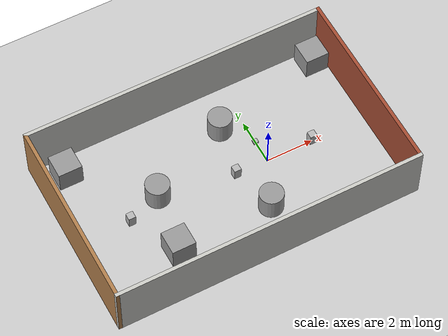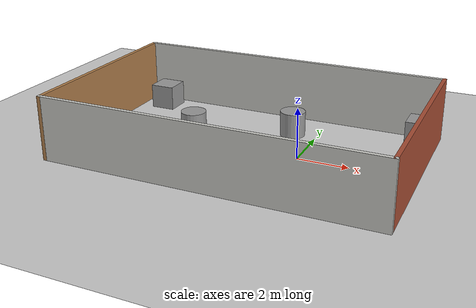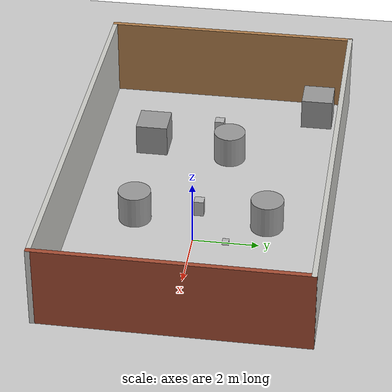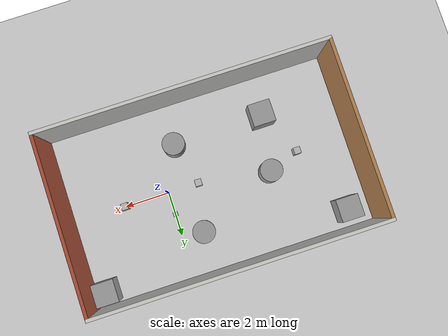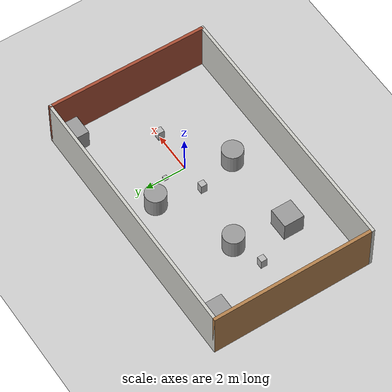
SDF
<sdf version='1.7'>
<world name='default'>
<light name='sun' type='directional'>
<cast_shadows>1</cast_shadows>
<pose>0 0 10 0 -0 0</pose>
<diffuse>0.8 0.8 0.8 1</diffuse>
<specular>0.2 0.2 0.2 1</specular>
<attenuation>
<range>1000</range>
<constant>0.9</constant>
<linear>0.01</linear>
<quadratic>0.001</quadratic>
</attenuation>
<direction>-0.5 0.1 -0.9</direction>
<spot>
<inner_angle>0</inner_angle>
<outer_angle>0</outer_angle>
<falloff>0</falloff>
</spot>
</light>
<model name='ground_plane'>
<static>1</static>
<link name='link'>
<collision name='collision'>
<geometry>
<plane>
<normal>0 0 1</normal>
<size>100 100</size>
</plane>
</geometry>
<surface>
<contact>
<collide_bitmask>65535</collide_bitmask>
<ode/>
</contact>
<friction>
<ode>
<mu>100</mu>
<mu2>50</mu2>
</ode>
<torsional>
<ode/>
</torsional>
</friction>
<bounce/>
</surface>
<max_contacts>10</max_contacts>
</collision>
<visual name='visual'>
<cast_shadows>0</cast_shadows>
<geometry>
<plane>
<normal>0 0 1</normal>
<size>100 100</size>
</plane>
</geometry>
<material>
<script>
<uri>file://media/materials/scripts/gazebo.material</uri>
<name>Gazebo/Grey</name>
</script>
</material>
</visual>
<self_collide>0</self_collide>
<enable_wind>0</enable_wind>
<kinematic>0</kinematic>
</link>
</model>
<gravity>0 0 -9.8</gravity>
<magnetic_field>6e-06 2.3e-05 -4.2e-05</magnetic_field>
<atmosphere type='adiabatic'/>
<physics type='ode'>
<max_step_size>0.001</max_step_size>
<real_time_factor>1</real_time_factor>
<real_time_update_rate>1000</real_time_update_rate>
</physics>
<scene>
<ambient>0.4 0.4 0.4 1</ambient>
<background>0.7 0.7 0.7 1</background>
<shadows>1</shadows>
</scene>
<wind/>
<spherical_coordinates>
<surface_model>EARTH_WGS84</surface_model>
<latitude_deg>0</latitude_deg>
<longitude_deg>0</longitude_deg>
<elevation>0</elevation>
<heading_deg>0</heading_deg>
</spherical_coordinates>
<model name='box_house'>
<pose>-1.97643 0.059964 0 0 -0 0</pose>
<link name='Wall_1'>
<collision name='Wall_1_Collision'>
<geometry>
<box>
<size>13 0.15 2.5</size>
</box>
</geometry>
<pose>0 0 1.25 0 -0 0</pose>
<surface>
<contact>
<ode/>
</contact>
<bounce/>
<friction>
<torsional>
<ode/>
</torsional>
<ode/>
</friction>
</surface>
<max_contacts>10</max_contacts>
</collision>
<visual name='Wall_1_Visual'>
<pose>0 0 1.25 0 -0 0</pose>
<geometry>
<box>
<size>13 0.15 2.5</size>
</box>
</geometry>
<material>
<script>
<uri>file://media/materials/scripts/gazebo.material</uri>
<name>Gazebo/CeilingTiled</name>
</script>
<ambient>1 1 1 1</ambient>
</material>
<meta>
<layer>0</layer>
</meta>
</visual>
<pose>0 3.925 0 0 -0 0</pose>
<self_collide>0</self_collide>
<enable_wind>0</enable_wind>
<kinematic>0</kinematic>
</link>
<link name='Wall_2'>
<collision name='Wall_2_Collision'>
<geometry>
<box>
<size>8 0.15 2.5</size>
</box>
</geometry>
<pose>0 0 1.25 0 -0 0</pose>
<surface>
<contact>
<ode/>
</contact>
<bounce/>
<friction>
<torsional>
<ode/>
</torsional>
<ode/>
</friction>
</surface>
<max_contacts>10</max_contacts>
</collision>
<visual name='Wall_2_Visual'>
<pose>0 0 1.25 0 -0 0</pose>
<geometry>
<box>
<size>8 0.15 2.5</size>
</box>
</geometry>
<material>
<script>
<uri>file://media/materials/scripts/gazebo.material</uri>
<name>Gazebo/Bricks</name>
</script>
<ambient>1 1 1 1</ambient>
</material>
<meta>
<layer>0</layer>
</meta>
</visual>
<pose>6.425 -0 0 0 -0 -1.5708</pose>
<self_collide>0</self_collide>
<enable_wind>0</enable_wind>
<kinematic>0</kinematic>
</link>
<link name='Wall_3'>
<collision name='Wall_3_Collision'>
<geometry>
<box>
<size>13 0.15 2.5</size>
</box>
</geometry>
<pose>0 0 1.25 0 -0 0</pose>
<surface>
<contact>
<ode/>
</contact>
<bounce/>
<friction>
<torsional>
<ode/>
</torsional>
<ode/>
</friction>
</surface>
<max_contacts>10</max_contacts>
</collision>
<visual name='Wall_3_Visual'>
<pose>0 0 1.25 0 -0 0</pose>
<geometry>
<box>
<size>13 0.15 2.5</size>
</box>
</geometry>
<material>
<script>
<uri>file://media/materials/scripts/gazebo.material</uri>
<name>Gazebo/CeilingTiled</name>
</script>
<ambient>1 1 1 1</ambient>
</material>
<meta>
<layer>0</layer>
</meta>
</visual>
<pose>0 -3.925 0 0 -0 3.14159</pose>
<self_collide>0</self_collide>
<enable_wind>0</enable_wind>
<kinematic>0</kinematic>
</link>
<link name='Wall_4'>
<collision name='Wall_4_Collision'>
<geometry>
<box>
<size>8 0.15 2.5</size>
</box>
</geometry>
<pose>0 0 1.25 0 -0 0</pose>
<surface>
<contact>
<ode/>
</contact>
<bounce/>
<friction>
<torsional>
<ode/>
</torsional>
<ode/>
</friction>
</surface>
<max_contacts>10</max_contacts>
</collision>
<visual name='Wall_4_Visual'>
<pose>0 0 1.25 0 -0 0</pose>
<geometry>
<box>
<size>8 0.15 2.5</size>
</box>
</geometry>
<material>
<script>
<uri>file://media/materials/scripts/gazebo.material</uri>
<name>Gazebo/Wood</name>
</script>
<ambient>1 1 1 1</ambient>
</material>
<meta>
<layer>0</layer>
</meta>
</visual>
<pose>-6.425 -0 0 0 -0 1.5708</pose>
<self_collide>0</self_collide>
<enable_wind>0</enable_wind>
<kinematic>0</kinematic>
</link>
<static>1</static>
</model>
<model name='unit_box'>
<pose>-7.27143 3.09748 0.5 0 -0 0</pose>
<link name='link'>
<inertial>
<mass>1</mass>
<inertia>
<ixx>0.166667</ixx>
<ixy>0</ixy>
<ixz>0</ixz>
<iyy>0.166667</iyy>
<iyz>0</iyz>
<izz>0.166667</izz>
</inertia>
<pose>0 0 0 0 -0 0</pose>
</inertial>
<collision name='collision'>
<geometry>
<box>
<size>1 1 1</size>
</box>
</geometry>
<surface>
<contact>
<ode/>
</contact>
<bounce/>
<friction>
<torsional>
<ode/>
</torsional>
<ode/>
</friction>
</surface>
<max_contacts>10</max_contacts>
</collision>
<visual name='visual'>
<geometry>
<box>
<size>1 1 1</size>
</box>
</geometry>
<material>
<script>
<name>Gazebo/Grey</name>
<uri>file://media/materials/scripts/gazebo.material</uri>
</script>
</material>
</visual>
<self_collide>0</self_collide>
<enable_wind>0</enable_wind>
<kinematic>0</kinematic>
</link>
</model>
<model name='unit_cylinder'>
<pose>-4.57746 0.509886 0.5 0 -0 0</pose>
<link name='link'>
<inertial>
<mass>1</mass>
<inertia>
<ixx>0.145833</ixx>
<ixy>0</ixy>
<ixz>0</ixz>
<iyy>0.145833</iyy>
<iyz>0</iyz>
<izz>0.125</izz>
</inertia>
<pose>0 0 0 0 -0 0</pose>
</inertial>
<collision name='collision'>
<geometry>
<cylinder>
<radius>0.5</radius>
<length>1</length>
</cylinder>
</geometry>
<surface>
<contact>
<ode/>
</contact>
<bounce/>
<friction>
<torsional>
<ode/>
</torsional>
<ode/>
</friction>
</surface>
<max_contacts>10</max_contacts>
</collision>
<visual name='visual'>
<geometry>
<cylinder>
<radius>0.5</radius>
<length>1</length>
</cylinder>
</geometry>
<material>
<script>
<name>Gazebo/Grey</name>
<uri>file://media/materials/scripts/gazebo.material</uri>
</script>
</material>
</visual>
<self_collide>0</self_collide>
<enable_wind>0</enable_wind>
<kinematic>0</kinematic>
</link>
</model>
<gui fullscreen='0'>
<camera name='user_camera'>
<pose>-2.68744 -4.4037 20.9537 -0 1.31164 1.40819</pose>
<view_controller>orbit</view_controller>
<projection_type>perspective</projection_type>
</camera>
</gui>
<model name='unit_box_0'>
<pose>-4.96407 -2.00354 0.5 0 -0 0</pose>
<link name='link'>
<inertial>
<mass>1</mass>
<inertia>
<ixx>0.166667</ixx>
<ixy>0</ixy>
<ixz>0</ixz>
<iyy>0.166667</iyy>
<iyz>0</iyz>
<izz>0.166667</izz>
</inertia>
<pose>0 0 0 0 -0 0</pose>
</inertial>
<collision name='collision'>
<geometry>
<box>
<size>1 1 1</size>
</box>
</geometry>
<surface>
<contact>
<ode/>
</contact>
<bounce/>
<friction>
<torsional>
<ode/>
</torsional>
<ode/>
</friction>
</surface>
<max_contacts>10</max_contacts>
</collision>
<visual name='visual'>
<geometry>
<box>
<size>1 1 1</size>
</box>
</geometry>
<material>
<script>
<name>Gazebo/Grey</name>
<uri>file://media/materials/scripts/gazebo.material</uri>
</script>
</material>
</visual>
<self_collide>0</self_collide>
<enable_wind>0</enable_wind>
<kinematic>0</kinematic>
</link>
</model>
<model name='unit_box_1'>
<pose>3.83312 3.3034 0.5 0 -0 0</pose>
<link name='link'>
<inertial>
<mass>1</mass>
<inertia>
<ixx>0.166667</ixx>
<ixy>0</ixy>
<ixz>0</ixz>
<iyy>0.166667</iyy>
<iyz>0</iyz>
<izz>0.166667</izz>
</inertia>
<pose>0 0 0 0 -0 0</pose>
</inertial>
<collision name='collision'>
<geometry>
<box>
<size>1 1 1</size>
</box>
</geometry>
<surface>
<contact>
<ode/>
</contact>
<bounce/>
<friction>
<torsional>
<ode/>
</torsional>
<ode/>
</friction>
</surface>
<max_contacts>10</max_contacts>
</collision>
<visual name='visual'>
<geometry>
<box>
<size>1 1 1</size>
</box>
</geometry>
<material>
<script>
<name>Gazebo/Grey</name>
<uri>file://media/materials/scripts/gazebo.material</uri>
</script>
</material>
</visual>
<self_collide>0</self_collide>
<enable_wind>0</enable_wind>
<kinematic>0</kinematic>
</link>
</model>
<model name='unit_cylinder_0'>
<pose>-0.988144 2.12658 0.5 0 -0 0</pose>
<link name='link'>
<inertial>
<mass>1</mass>
<inertia>
<ixx>0.145833</ixx>
<ixy>0</ixy>
<ixz>0</ixz>
<iyy>0.145833</iyy>
<iyz>0</iyz>
<izz>0.125</izz>
</inertia>
<pose>0 0 0 0 -0 0</pose>
</inertial>
<collision name='collision'>
<geometry>
<cylinder>
<radius>0.5</radius>
<length>1</length>
</cylinder>
</geometry>
<surface>
<contact>
<ode/>
</contact>
<bounce/>
<friction>
<torsional>
<ode/>
</torsional>
<ode/>
</friction>
</surface>
<max_contacts>10</max_contacts>
</collision>
<visual name='visual'>
<geometry>
<cylinder>
<radius>0.5</radius>
<length>1</length>
</cylinder>
</geometry>
<material>
<script>
<name>Gazebo/Grey</name>
<uri>file://media/materials/scripts/gazebo.material</uri>
</script>
</material>
</visual>
<self_collide>0</self_collide>
<enable_wind>0</enable_wind>
<kinematic>0</kinematic>
</link>
</model>
<model name='unit_cylinder_1'>
<pose>-0.890578 -1.90634 0.5 0 -0 0</pose>
<link name='link'>
<inertial>
<mass>1</mass>
<inertia>
<ixx>0.145833</ixx>
<ixy>0</ixy>
<ixz>0</ixz>
<iyy>0.145833</iyy>
<iyz>0</iyz>
<izz>0.125</izz>
</inertia>
<pose>0 0 0 0 -0 0</pose>
</inertial>
<collision name='collision'>
<geometry>
<cylinder>
<radius>0.5</radius>
<length>1</length>
</cylinder>
</geometry>
<surface>
<contact>
<ode/>
</contact>
<bounce/>
<friction>
<torsional>
<ode/>
</torsional>
<ode/>
</friction>
</surface>
<max_contacts>10</max_contacts>
</collision>
<visual name='visual'>
<geometry>
<cylinder>
<radius>0.5</radius>
<length>1</length>
</cylinder>
</geometry>
<material>
<script>
<name>Gazebo/Grey</name>
<uri>file://media/materials/scripts/gazebo.material</uri>
</script>
</material>
</visual>
<self_collide>0</self_collide>
<enable_wind>0</enable_wind>
<kinematic>0</kinematic>
</link>
</model>
<!-- 动态往复移动障碍物方块，红色 -->
<model name="dynamic_obs">
<pose>-1.4 0 0.27 0 0 0</pose>
<link name="base_link">
<kinematic>true</kinematic>
<visual name="visual">
<geometry>
<box>
<size>0.3 0.3 0.5</size>
</box>
</geometry>
<material>
<name>Gazebo/Red</name>
</material>
</visual>
<collision name="collision">
<geometry>
<box>
<size>0.3 0.3 0.5</size>
</box>
</geometry>
</collision>
<inertial>
<mass>1.0</mass>
<inertia ixx="0.001" ixy="0.0" ixz="0.0" iyy="0.001" iyz="0.0" izz="0.001"/>
</inertial>
<sensor name="retro_sensor" type="retro">
  <retro>200.0</retro>
</sensor>
</link>
</model>
<model name="dynamic_obs_1">
<pose>-6 0 0.27 0 0 0</pose>
<link name="base_link">
<kinematic>true</kinematic>
<visual name="visual">
<geometry>
<box>
<size>0.3 0.3 0.5</size>
</box>
</geometry>
<material>
<name>Gazebo/Red</name>
</material>
</visual>
<collision name="collision">
<geometry>
<box>
<size>0.3 0.3 0.5</size>
</box>
</geometry>
</collision>
<inertial>
<mass>1.0</mass>
<inertia ixx="0.001" ixy="0.0" ixz="0.0" iyy="0.001" iyz="0.0" izz="0.001"/>
</inertial>
<sensor name="retro_sensor" type="retro">
  <retro>200.0</retro>
</sensor>
</link>
</model>

<model name="dynamic_obs_2">
<pose>2 0 0.27 0 0 0</pose>
<link name="base_link">
<kinematic>true</kinematic>
<visual name="visual">
<geometry>
<box>
<size>0.3 0.3 0.5</size>
</box>
</geometry>
<material>
<name>Gazebo/Red</name>
</material>
</visual>
<collision name="collision">
<geometry>
<box>
<size>0.3 0.3 0.5</size>
</box>
</geometry>
</collision>
<inertial>
<mass>1.0</mass>
<inertia ixx="0.001" ixy="0.0" ixz="0.0" iyy="0.001" iyz="0.0" izz="0.001"/>
</inertial>
<sensor name="retro_sensor" type="retro">
  <retro>200.0</retro>
</sensor>
</link>
</model>
<model name="virtual_static_obs">
  <static>true</static>
  <pose>0 1.0 0.05 0 0 0</pose>
  <link name="link">
    <collision name="collision">
      <geometry>
        <box>
          <size>0.2 0.2 0.1</size>
        </box>
      </geometry>
    </collision>
    <visual name="visual">
      <geometry>
        <box>
          <size>0.2 0.2 0.1</size>
        </box>
      </geometry>
      <material>
        <name>Gazebo/Blue</name>
      </material>
    </visual>
    <sensor name="retro_sensor" type="retro">
      <retro>0.0</retro>
    </sensor>
  </link>
</model>

 </world>
</sdf>
